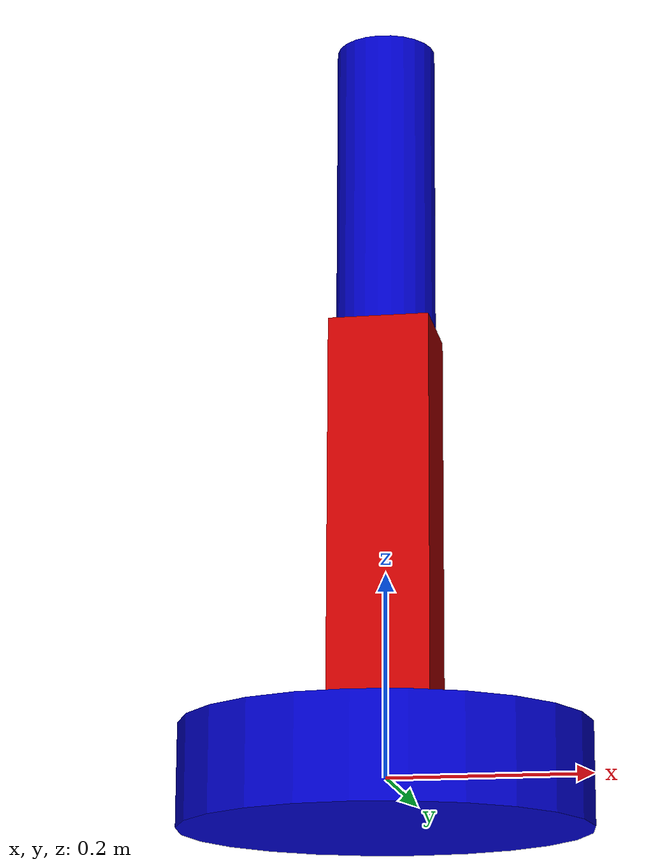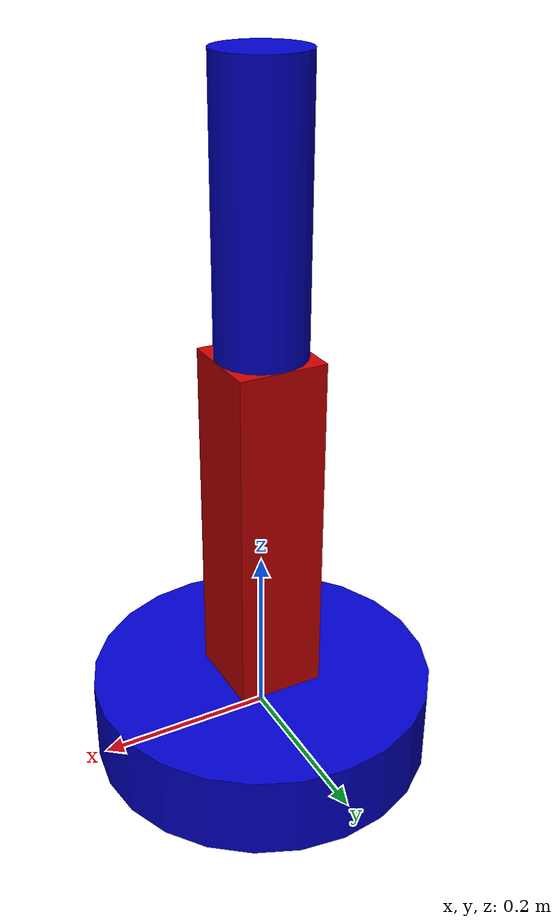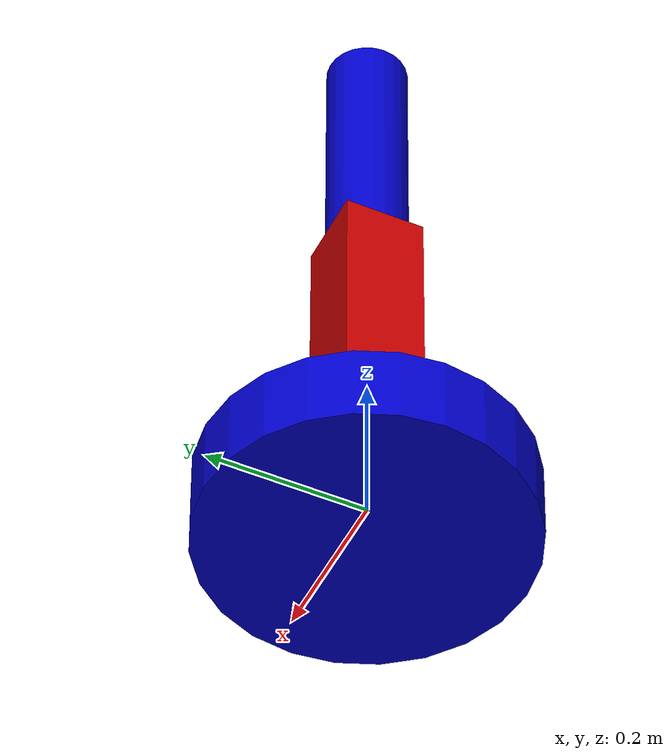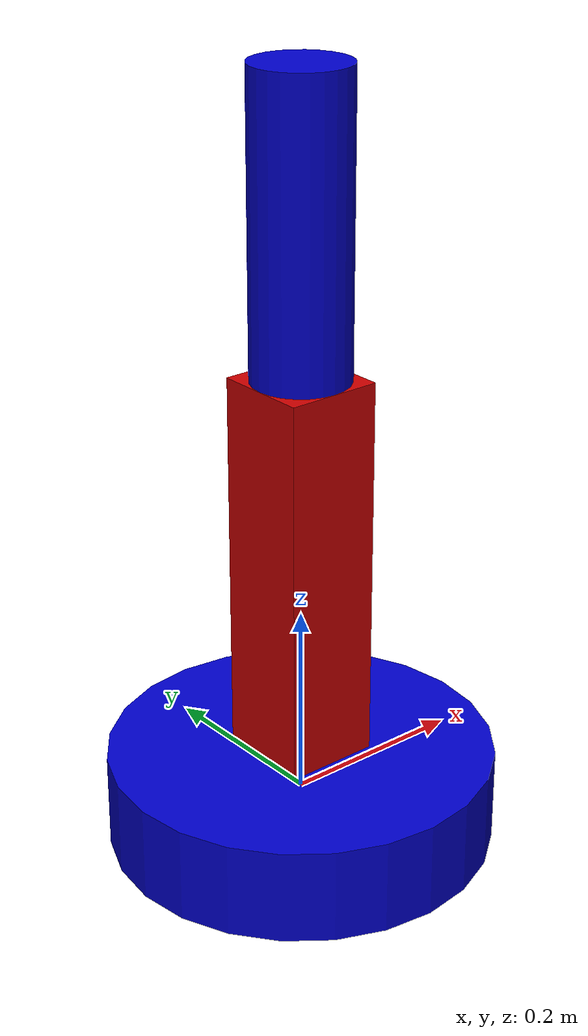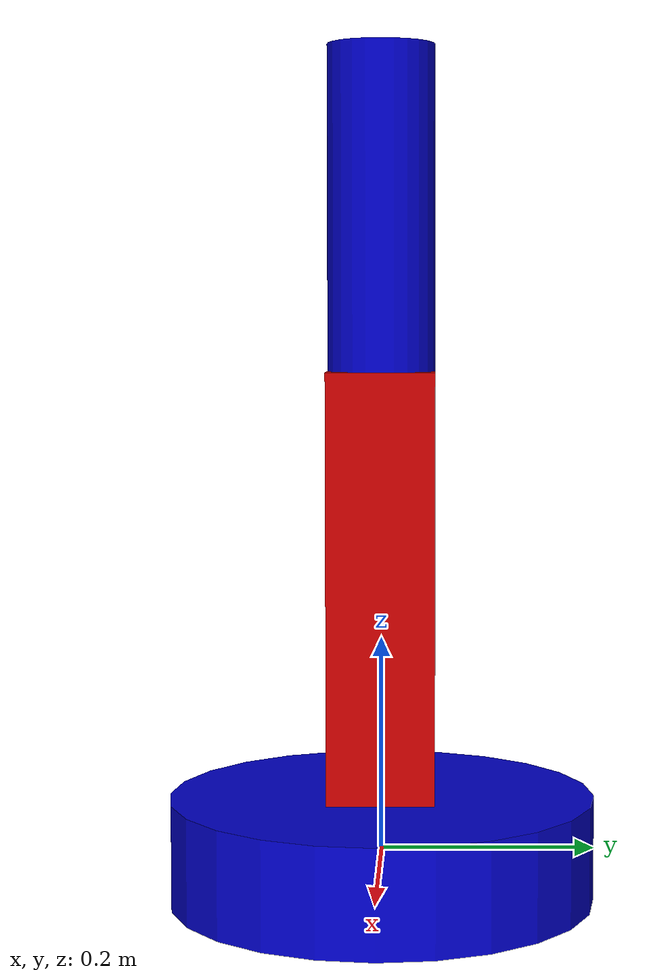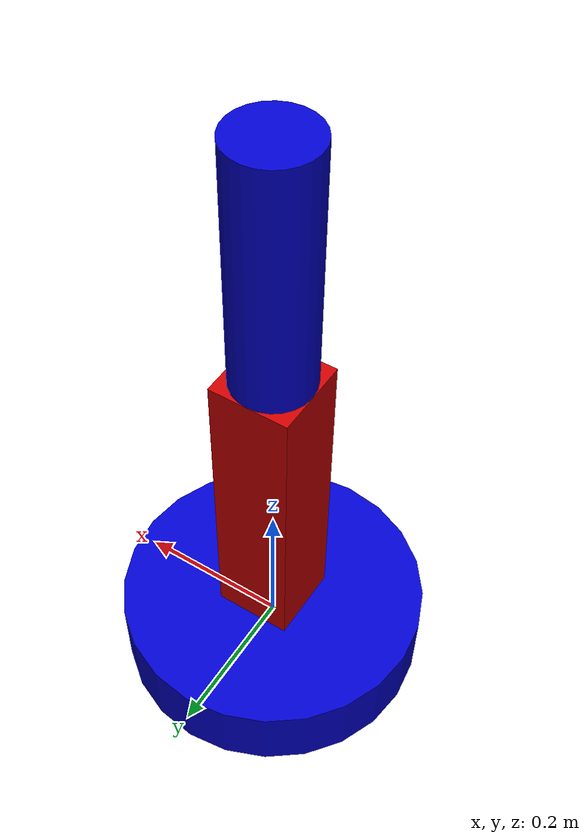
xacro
<robot name="simple_arm_xacro"
  xmlns:xacro="http://www.ros.org/wiki/xacro">
  <xacro:property name="base_length" value="0.1" />
  <xacro:property name="base_radius" value="0.2" />
  <xacro:property name="link1_length" value="0.4" />
  <xacro:property name="link2_length" value="0.3" />

  <!-- 定义颜色，用于rviz显示 -->
  <material name="blue">
    <color rgba="0 0 0.8 1"/>
  </material>
  <material name="red">
    <color rgba="0.8 0 0 1"/>
  </material>
  <!-- 基座 -->
  <link name="base_link">
    <visual>
      <geometry>
        <cylinder length="${base_length}" radius="${base_radius}"/>
      </geometry>
      <material name="blue"/>
    </visual>
    <collision>
      <geometry>
        <cylinder length="${base_length}" radius="${base_radius}"/>
      </geometry>
    </collision>
  </link>
  <!-- 连杆1 -->
  <link name="link_1">
    <visual>
      <geometry>
        <box size="0.1 0.1 ${link1_length}"/>
      </geometry>
      <origin xyz="0 0 ${link1_length/2}" rpy="0 0 0"/>
      <material name="red"/>
    </visual>
    <collision>
      <geometry>
        <box size="0.1 0.1 ${link1_length}"/>
      </geometry>
      <origin xyz="0 0 ${link1_length/2}" />
    </collision>
  </link>
  <!-- 节点1（连接基座和连杆1） -->
  <joint name="joint_1" type="revolute">
    <parent link="base_link" />
    <child link="link_1" />
    <origin xyz="0 0 ${base_length/2}" rpy="0 0 0" />
    <axis xyz="0 1 0" />
    <limit lower="-1.0" upper="1.0" effort="10" velocity="1"/>
  </joint>
  <!-- 连杆2 -->
  <link name="link_2">
    <visual>
      <origin xyz="0 0 ${link2_length/2}" rpy="0 0 0" />
      <geometry>
        <cylinder radius="0.05" length="${link2_length}" />
      </geometry>
      <material name="blue"/>
    </visual>
    <collision>
      <origin xyz="0 0 ${link2_length/2}" rpy="0 0 0" />
      <geometry>
        <cylinder radius="0.05" length="${link2_length}" />
      </geometry>
    </collision>
  </link>
  <!-- 节点2（连接连杆1和连杆2） -->
  <joint name="joint_2" type="revolute">
    <parent link="link_1" />
    <child link="link_2" />
    <origin xyz="0 0 ${link1_length}" rpy="0 0 0" />
    <axis xyz="1 0 0" />
    <limit lower="-${pi/2}" upper="${pi/2}" effort="10" velocity="1"/>
  </joint>
</robot>
